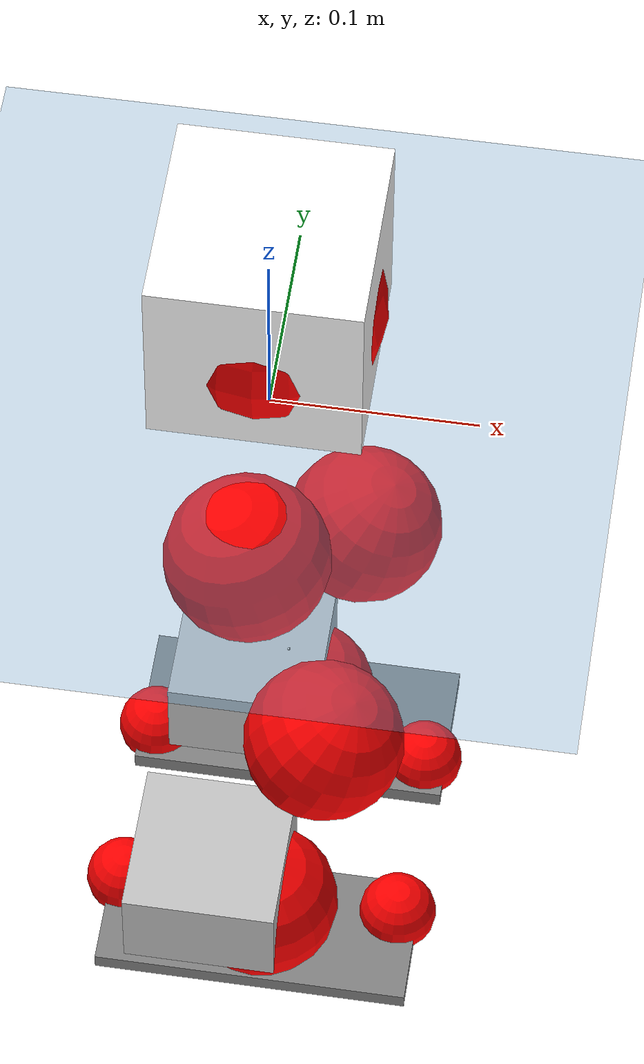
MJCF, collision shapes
<mujoco model="pi_12dof_release_v1">
  <compiler angle="radian" assetdir="assets" balanceinertia="true" inertiafromgeom="false"/>

  <option timestep="0.005" density="1.2" viscosity="2e-05"/>

  <size nkey="1"/>

  <visual>
    <quality shadowsize="8192"/>
    <map shadowclip="0.5"/>
  </visual>

  <default>
    <default class="/">
      <joint armature="0.01" damping="0.01" frictionloss="0.01"/>
      <geom contype="0" conaffinity="0" group="1" solref="-1000 -80"/>
      <site size="0.01 0.005 0.005" group="5"/>
      <general forcelimited="true" biastype="affine" gainprm="20" biasprm="0 -20 -0.5"/>
      <default class="foot">
        <geom size="0.0845 0.036 0.005" type="box" condim="6" group="4" priority="1" friction="0.9 0.2 0.2" solimp="0.015 1 0.005"/>
      </default>
      <default class="reward_collision_sphere">
        <geom group="5" rgba="1 0 0 1"/>
      </default>
    </default>
  </default>

  <asset>
    <texture type="skybox" colorspace="auto" name="//unnamed_texture_0" builtin="gradient" rgb1="0.95 0.95 0.95" rgb2="0.95 0.95 0.95" width="100" height="600"/>
    <texture type="2d" colorspace="auto" name="texplane" builtin="checker" rgb1="0.345 0.575 0.748" rgb2="0.345 0.575 0.748" markrgb="1 1 1" width="512" height="512"/>
    <material name="MatPlane" class="/" texture="texplane" texuniform="true" texrepeat="2 2" specular="0.9"/>
    <mesh name="baselink_1" class="/" file="baselink_1.STL"/>
    <mesh name="r_hip_pitch_link" class="/" file="r_hip_pitch_link.STL"/>
    <mesh name="r_hip_roll_link" class="/" file="r_hip_roll_link.STL"/>
    <mesh name="r_thigh_link" class="/" file="r_thigh_link.STL"/>
    <mesh name="r_calf_link" class="/" file="r_calf_link.STL"/>
    <mesh name="r_ankle_pitch_link" class="/" file="r_ankle_pitch_link.STL"/>
    <mesh name="r_ankle_roll_link" class="/" file="r_ankle_roll_link.STL"/>
    <mesh name="l_hip_pitch_link" class="/" file="l_hip_pitch_link.STL"/>
    <mesh name="l_hip_roll_link" class="/" file="l_hip_roll_link.STL"/>
    <mesh name="l_thigh_link" class="/" file="l_thigh_link.STL"/>
    <mesh name="l_calf_link" class="/" file="l_calf_link.STL"/>
    <mesh name="l_ankle_pitch_link" class="/" file="l_ankle_pitch_link.STL"/>
    <mesh name="l_ankle_roll_link" class="/" file="l_ankle_roll_link.STL"/>
  </asset>

  <worldbody>
    <geom name="floor" class="/" size="100 100 0.125" type="plane" group="0" material="MatPlane"/>
    <light name="toplight_shadow" class="/" pos="0 0 5" dir="0.0990148 0.0990148 -0.990148" type="directional" ambient="0.04 0.04 0.04" diffuse="0.55 0.55 0.55" specular="0.12 0.12 0.12"/>
    <light name="toplight_fill" class="/" pos="0 0 5" dir="0.0990148 0.0990148 -0.990148" type="directional" castshadow="false" ambient="0.04 0.04 0.04" diffuse="0.3 0.3 0.3" specular="0.08 0.08 0.08"/>
    <body name="trunk" pos="0.00016027 -0.00021494 -0.00247629" quat="0.999999 -0.000780296 0.000759016 -0.000352589">
      <inertial pos="0.00167624 0.000606216 0.0443766" quat="0.702167 0.01463 0.0110028 0.711777" mass="2.23067" diaginertia="0.0144516 0.00402383 0.00680929"/>
      <joint name="//unnamed_joint_0" type="free"/>
      <geom name="//unnamed_geom_1" class="/" type="mesh" density="0" rgba="1 1 1 1" mesh="baselink_1"/>
      <geom name="//unnamed_geom_2" class="/" size="0.0502542 0.0502542 0.0502542" pos="0 0 0.0876467" type="box" rgba="1 1 1 1"/>
      <geom name="//unnamed_geom_3" class="reward_collision_sphere" size="0.0552797" pos="0 0 0.0766908"/>
      <site name="imu" class="/" pos="-0.00262914 0.000875184 -0.00726889" size="0.0100508"/>
      <camera name="track" class="/" pos="0 -1.68896 0" quat="0.707107 0.707107 0 0" mode="trackcom"/>
      <camera name="ego_camera" class="/" pos="0.0806394 0 0.197205" quat="-0.5 -0.5 0.5 0.5"/>
      <body name="r_hip_pitch_link" pos="0.00115412 -0.0198237 -0.0347796" quat="0.992201 -1.39533e-05 -0.124649 3.40687e-05">
        <inertial pos="-0.000850756 -0.0479504 -0.00215432" quat="-0.0125644 0.713108 -0.0255319 0.700476" mass="0.375524" diaginertia="0.000158079 4.26065e-05 0.000130776"/>
        <joint name="r_hip_pitch_joint" class="/" pos="0 0 0" axis="-0.00175155 -0.999987 0.00478287" stiffness="0.00366386" range="-1.76669 1.27002" armature="0.00998068" damping="0.0178239" frictionloss="0.00992997"/>
        <geom name="//unnamed_geom_4" class="/" type="mesh" density="0" rgba="0.75294 0.75294 0.75294 1" mesh="r_hip_pitch_link"/>
        <geom name="//unnamed_geom_5" class="/" size="0.000502542 0.000502542 0.000502542" type="box" rgba="0.75294 0.75294 0.75294 1"/>
        <body name="r_hip_roll_link" pos="-0.00144253 -0.0467446 0.00196519" quat="1 5.34846e-06 1.23793e-05 -6.94564e-06">
          <inertial pos="-0.000515209 4.43456e-05 -0.0656543" quat="0.702737 -0.0768794 -0.0824446 0.702462" mass="0.380801" diaginertia="0.000464653 0.000116625 0.000193745"/>
          <joint name="r_hip_roll_joint" class="/" pos="0 0 0" axis="-0.999988 0.00329183 0.00371964" range="-0.116054 0.494947" armature="0.00877953" damping="0.00703945" frictionloss="0.0102165"/>
          <geom name="//unnamed_geom_6" class="/" type="mesh" density="0" rgba="0.75294 0.75294 0.75294 1" mesh="r_hip_roll_link"/>
          <geom name="//unnamed_geom_7" class="/" size="0.000502542 0.000502542 0.000502542" type="box" rgba="0.75294 0.75294 0.75294 1"/>
          <geom name="//unnamed_geom_8" class="reward_collision_sphere" size="0.0402034"/>
          <body name="r_thigh_link" pos="0.00130336 -0.000139988 -0.075481" quat="1 -2.28942e-05 -6.60546e-05 -2.83214e-05">
            <inertial pos="-0.00218838 -0.00157164 -0.051956" quat="0.737203 0.675668 -3.1232e-05 0.00219818" mass="0.113569" diaginertia="0.000173964 4.07327e-05 9.14048e-05"/>
            <joint name="r_thigh_joint" class="/" pos="0 0 0" axis="0.00137906 0.000337278 -0.999999" range="-0.295053 0.628185" armature="0.00888878" damping="0.009401" frictionloss="0.0102064"/>
            <geom name="//unnamed_geom_9" class="/" type="mesh" density="0" rgba="0.75294 0.75294 0.75294 1" mesh="r_thigh_link"/>
            <geom name="//unnamed_geom_10" class="/" size="0.000502542 0.000502542 0.000502542" type="box" rgba="0.75294 0.75294 0.75294 1"/>
            <body name="r_calf_link" pos="-0.00136358 -0.00125343 -0.0772939" quat="0.947644 -0.000298579 0.319325 -0.00125283">
              <inertial pos="0.00034186 -0.000782483 -0.0767131" quat="0.999849 -0.0119965 -0.00599125 0.0110846" mass="0.863179" diaginertia="0.00510083 0.00152405 0.000279133"/>
              <joint name="r_calf_joint" class="/" pos="0 0 0" axis="0.00447252 -0.999985 0.00310356" stiffness="0.00295016" range="-1.64605 0.645335" armature="0.0100733" damping="0.0088419" frictionloss="0.0103017"/>
              <geom name="//unnamed_geom_11" class="/" type="mesh" density="0" rgba="0.75294 0.75294 0.75294 1" mesh="r_calf_link"/>
              <geom name="//unnamed_geom_12" class="/" size="0.000502542 0.000502542 0.000502542" type="box" rgba="0.75294 0.75294 0.75294 1"/>
              <geom name="//unnamed_geom_13" class="reward_collision_sphere" size="0.0402034"/>
              <body name="r_ankle_pitch_link" pos="0.00108384 0.000868957 -0.152653" quat="0.980067 -4.96222e-06 -0.198669 -0.000152805">
                <inertial pos="0.00562119 0.00286122 0.000837751" quat="0.00620537 0.705454 -8.85879e-05 0.708729" mass="0.181636" diaginertia="0.000443689 9.3286e-05 0.00018744"/>
                <joint name="r_ankle_pitch_joint" class="/" pos="0 0 0" axis="0.000621477 -1 -0.000222223" range="-1.29669 0.49756" armature="0.0104989" damping="0.0229382" frictionloss="0.00995384"/>
                <geom name="//unnamed_geom_14" class="/" type="mesh" density="0" rgba="0.75294 0.75294 0.75294 1" mesh="r_ankle_pitch_link"/>
                <geom name="//unnamed_geom_15" class="/" size="0.0391983 0.0402034 0.0251271" type="box" rgba="0.75294 0.75294 0.75294 1"/>
                <body name="r_ankle_roll_link" pos="0.0801059 0.000917382 0.000519028" quat="1 4.99315e-05 -0.000339564 0.000209872">
                  <inertial pos="-0.0242319 -0.00204868 -0.014548" quat="0.56735 0.424939 0.426127 0.5621" mass="0.513246" diaginertia="0.00157001 0.000441398 0.000431898"/>
                  <joint name="r_ankle_roll_joint" class="/" pos="0 0 0" axis="-0.999993 -0.000419215 0.00376704" range="-0.201518 0.156353" armature="0.00903616" damping="0.00842324" frictionloss="0.0088866"/>
                  <geom name="//unnamed_geom_16" class="/" type="mesh" density="0" rgba="0.75294 0.75294 0.75294 1" mesh="r_ankle_roll_link"/>
                  <geom name="//unnamed_geom_17" class="/" type="mesh" rgba="0.75294 0.75294 0.75294 1" mesh="r_ankle_roll_link"/>
                  <geom name="right_foot" class="foot" size="0.0814567 0.034888 0.00446934" pos="-0.0548348 0 -0.0482057"/>
                  <geom name="//unnamed_geom_19" class="reward_collision_sphere" size="0.0402034" pos="-0.0537596 0 -0.0219117"/>
                  <geom name="//unnamed_geom_20" class="reward_collision_sphere" size="0.0201017" pos="0.0161279 0.0168896 -0.0438233"/>
                  <geom name="//unnamed_geom_21" class="reward_collision_sphere" size="0.0201017" pos="-0.129023 0.0168896 -0.0438233"/>
                  <site name="right_foot" class="foot" pos="-0.0548348 0 -0.0482057" size="0.0100508"/>
                </body>
              </body>
            </body>
          </body>
        </body>
      </body>
      <body name="l_hip_pitch_link" pos="0.000714482 0.0188688 -0.0345469" quat="0.992193 -0.000394022 -0.12471 -0.000195149">
        <inertial pos="0.00178114 0.0431308 -0.00256874" quat="-0.0428342 0.704727 0.0290421 0.707588" mass="0.393258" diaginertia="0.000185088 4.45811e-05 0.000155933"/>
        <joint name="l_hip_pitch_joint" class="/" pos="0 0 0" axis="-0.00193466 0.999941 -0.0106554" range="-1.29572 1.75816" armature="0.0100779" damping="0" frictionloss="0.00996479"/>
        <geom name="//unnamed_geom_22" class="/" type="mesh" density="0" rgba="0.75294 0.75294 0.75294 1" mesh="l_hip_pitch_link"/>
        <geom name="//unnamed_geom_23" class="/" size="0.000502542 0.000502542 0.000502542" type="box" rgba="0.75294 0.75294 0.75294 1"/>
        <body name="l_hip_roll_link" pos="-0.000997829 0.045162 0.00217615" quat="1 -2.31519e-05 -0.000251908 0.000488452">
          <inertial pos="0.000999855 -0.00132003 -0.0695481" quat="0.699098 -0.0750358 -0.078078 0.706778" mass="0.404822" diaginertia="0.000508362 0.000122992 0.000211619"/>
          <joint name="l_hip_roll_joint" class="/" pos="0 0 0" axis="-0.999996 0.00283925 0.000814107" range="-0.500981 0.112524" armature="0.00952112" damping="0.00813877" frictionloss="0.0100252"/>
          <geom name="//unnamed_geom_24" class="/" type="mesh" density="0" rgba="0.75294 0.75294 0.75294 1" mesh="l_hip_roll_link"/>
          <geom name="//unnamed_geom_25" class="/" size="0.000502542 0.000502542 0.000502542" type="box" rgba="0.75294 0.75294 0.75294 1"/>
          <geom name="//unnamed_geom_26" class="reward_collision_sphere" size="0.0402034"/>
          <body name="l_thigh_link" pos="-0.000800837 -0.000414365 -0.0773447" quat="1 -0.000459019 -7.73371e-05 -0.000536396">
            <inertial pos="-0.00192264 -0.00113376 -0.0547818" quat="0.672004 0.740482 -0.00930271 0.00328265" mass="0.11364" diaginertia="0.00017773 4.0267e-05 8.94244e-05"/>
            <joint name="l_thigh_joint" class="/" pos="0 0 0" axis="0.000343525 0.000899708 -1" range="-0.608496 0.301533" armature="0.0103626" damping="0.010864" frictionloss="0.0113191"/>
            <geom name="//unnamed_geom_27" class="/" type="mesh" density="0" rgba="0.75294 0.75294 0.75294 1" mesh="l_thigh_link"/>
            <geom name="//unnamed_geom_28" class="/" size="0.000502542 0.000502542 0.000502542" type="box" rgba="0.75294 0.75294 0.75294 1"/>
            <body name="l_calf_link" pos="0.00203651 0.000262964 -0.0751246" quat="0.947625 5.23687e-05 0.319385 6.44464e-05">
              <inertial pos="-0.00100297 0.00218063 -0.0777135" quat="0.999906 -0.000986952 -0.00856947 0.010673" mass="0.824394" diaginertia="0.00536971 0.0015487 0.000283488"/>
              <joint name="l_calf_joint" class="/" pos="0 0 0" axis="-0.000529187 0.999999 0.00144964" range="-0.689417 1.69775" armature="0.00963179" damping="0.0034244" frictionloss="0.0103466"/>
              <geom name="//unnamed_geom_29" class="/" type="mesh" density="0" rgba="0.75294 0.75294 0.75294 1" mesh="l_calf_link"/>
              <geom name="//unnamed_geom_30" class="/" size="0.000502542 0.000502542 0.000502542" type="box" rgba="0.75294 0.75294 0.75294 1"/>
              <geom name="//unnamed_geom_31" class="reward_collision_sphere" size="0.0402034"/>
              <body name="l_ankle_pitch_link" pos="0.00223695 -0.000266074 -0.152707" quat="0.980074 1.62263e-06 -0.198634 3.8425e-05">
                <inertial pos="0.00479324 -0.00101512 -0.00238158" quat="-0.000561906 0.708587 0.00438248 0.70561" mass="0.175213" diaginertia="0.000458617 9.69056e-05 0.000189572"/>
                <joint name="l_ankle_pitch_joint" class="/" pos="0 0 0" axis="-0.00262871 0.999997 0.000183849" stiffness="0.00381244" range="-0.521305 1.31584" armature="0.0104124" damping="0" frictionloss="0.00929013"/>
                <geom name="//unnamed_geom_32" class="/" type="mesh" density="0" rgba="0.75294 0.75294 0.75294 1" mesh="l_ankle_pitch_link"/>
                <geom name="//unnamed_geom_33" class="/" size="0.0391983 0.0402034 0.0251271" type="box" rgba="0.75294 0.75294 0.75294 1"/>
                <body name="l_ankle_roll_link" pos="0.0788375 0.00192297 -0.0020557" quat="0.999999 -0.000824875 0.000501173 -0.000839125">
                  <inertial pos="-0.0267355 -0.000325555 -0.0158005" quat="0.5597 0.421597 0.435226 0.565306" mass="0.532447" diaginertia="0.00163765 0.000443758 0.000436022"/>
                  <joint name="l_ankle_roll_joint" class="/" pos="0 0 0" axis="-1 -0.000234845 -0.000567999" stiffness="0.00209337" range="-0.154265 0.101265" armature="0.0100848" damping="0.00113947" frictionloss="0.01025"/>
                  <geom name="//unnamed_geom_34" class="/" type="mesh" density="0" rgba="0.75294 0.75294 0.75294 1" mesh="l_ankle_roll_link"/>
                  <geom name="//unnamed_geom_35" class="/" type="mesh" rgba="0.75294 0.75294 0.75294 1" mesh="l_ankle_roll_link"/>
                  <geom name="left_foot" class="foot" size="0.0825233 0.0394468 0.00471944" pos="-0.0548348 0 -0.0482057"/>
                  <geom name="//unnamed_geom_37" class="reward_collision_sphere" size="0.0402034" pos="-0.0537596 0 -0.0219117"/>
                  <geom name="//unnamed_geom_38" class="reward_collision_sphere" size="0.0201017" pos="0.0161279 -0.0168896 -0.0438233"/>
                  <geom name="//unnamed_geom_39" class="reward_collision_sphere" size="0.0201017" pos="-0.129023 -0.0168896 -0.0438233"/>
                  <site name="left_foot" class="foot" pos="-0.0548348 0 -0.0482057" size="0.0100508"/>
                </body>
              </body>
            </body>
          </body>
        </body>
      </body>
    </body>
  </worldbody>

  <contact>
    <pair class="/" geom1="floor" geom2="right_foot" name="//unnamed_contact_1"/>
    <pair class="/" geom1="floor" geom2="left_foot" name="//unnamed_contact_0"/>
  </contact>

  <actuator>
    <general name="r_hip_pitch_joint" class="/" joint="r_hip_pitch_joint" forcerange="-22.6931 22.6931" gainprm="18.8818" biasprm="0 -18.8818 -0.47906"/>
    <general name="r_hip_roll_joint" class="/" joint="r_hip_roll_joint" forcerange="-19.1129 19.1129" gainprm="18.8818" biasprm="0 -18.8818 -0.47906"/>
    <general name="r_thigh_joint" class="/" joint="r_thigh_joint" forcerange="-21.3308 21.3308" gainprm="18.8818" biasprm="0 -18.8818 -0.47906"/>
    <general name="r_calf_joint" class="/" joint="r_calf_joint" forcerange="-23.1144 23.1144" gainprm="18.8818" biasprm="0 -18.8818 -0.47906"/>
    <general name="r_ankle_pitch_joint" class="/" joint="r_ankle_pitch_joint" forcerange="-21.6098 21.6098" gainprm="18.8818" biasprm="0 -18.8818 -0.47906"/>
    <general name="r_ankle_roll_joint" class="/" joint="r_ankle_roll_joint" forcerange="-19.0807 19.0807" gainprm="18.8818" biasprm="0 -18.8818 -0.47906"/>
    <general name="l_hip_pitch_joint" class="/" joint="l_hip_pitch_joint" forcerange="-21.3547 21.3547" gainprm="18.8818" biasprm="0 -18.8818 -0.47906"/>
    <general name="l_hip_roll_joint" class="/" joint="l_hip_roll_joint" forcerange="-20.7803 20.7803" gainprm="18.8818" biasprm="0 -18.8818 -0.47906"/>
    <general name="l_thigh_joint" class="/" joint="l_thigh_joint" forcerange="-21.1539 21.1539" gainprm="18.8818" biasprm="0 -18.8818 -0.47906"/>
    <general name="l_calf_joint" class="/" joint="l_calf_joint" forcerange="-21.2687 21.2687" gainprm="18.8818" biasprm="0 -18.8818 -0.47906"/>
    <general name="l_ankle_pitch_joint" class="/" joint="l_ankle_pitch_joint" forcerange="-21.0022 21.0022" gainprm="18.8818" biasprm="0 -18.8818 -0.47906"/>
    <general name="l_ankle_roll_joint" class="/" joint="l_ankle_roll_joint" forcerange="-21.3817 21.3817" gainprm="18.8818" biasprm="0 -18.8818 -0.47906"/>
  </actuator>

  <sensor>
    <gyro site="imu" name="imu_angular_velocity"/>
    <velocimeter site="imu" name="imu_linear_velocity"/>
    <framelinvel objtype="site" objname="left_foot" name="left_foot_global_linear_velocity"/>
    <framelinvel objtype="site" objname="right_foot" name="right_foot_global_linear_velocity"/>
  </sensor>

  <keyframe>
    <key name="home" qpos="0 0 0.291 1 0 0 0 0.4 0 0 -0.8 0.4 0 -0.4 0 0 0.8 -0.4 0"/>
  </keyframe>
</mujoco>
